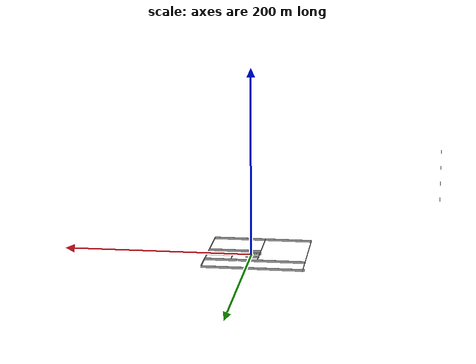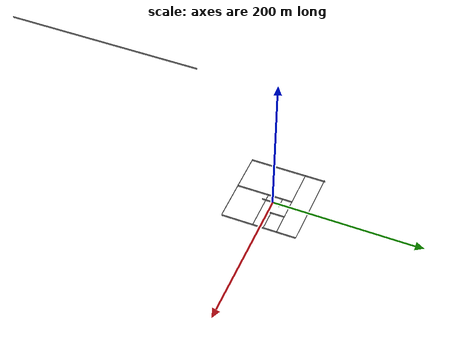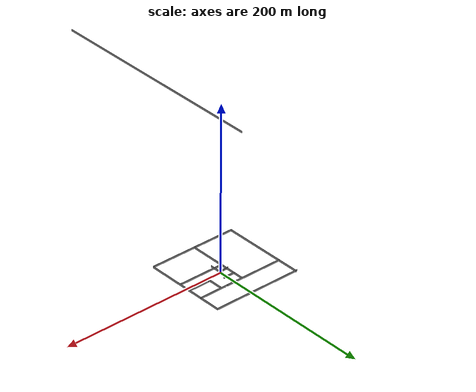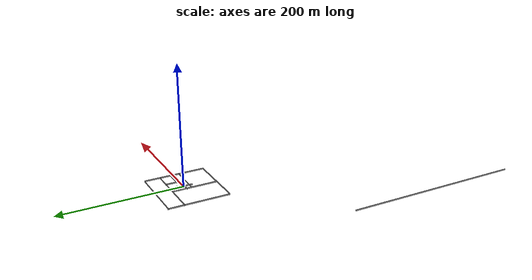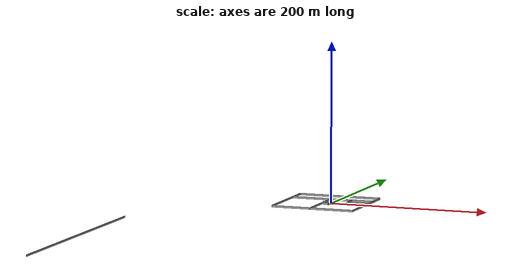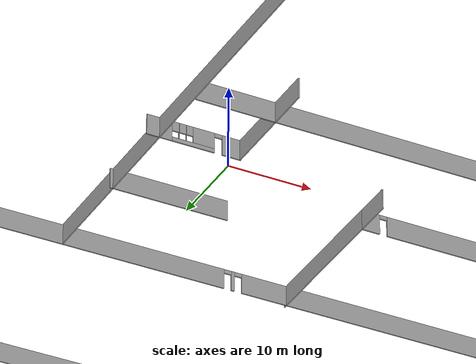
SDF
<?xml version='1.0'?>
<sdf version='1.7'>
  <model name='WorldOne'>
    <pose>-74.4501 -217.233 0 0 -0 0</pose>
    <link name='Wall_15'>
      <collision name='Wall_15_Collision'>
        <geometry>
          <box>
            <size>294 0.15 2.5</size>
          </box>
        </geometry>
        <pose>0 0 1.25 0 -0 0</pose>
      </collision>
      <visual name='Wall_15_Visual'>
        <pose>0 0 1.25 0 -0 0</pose>
        <geometry>
          <box>
            <size>294 0.15 2.5</size>
          </box>
        </geometry>
        <material>
          <script>
            <uri>file://media/materials/scripts/gazebo.material</uri>
            <name>Gazebo/Grey</name>
          </script>
          <ambient>1 1 1 1</ambient>
        </material>
        <meta>
          <layer>0</layer>
        </meta>
      </visual>
      <pose>-121.056 -119.672 0 0 -0 -1.5708</pose>
    </link>
    <link name='Wall_18'>
      <collision name='Wall_18_Collision'>
        <geometry>
          <box>
            <size>107.25 0.15 2.5</size>
          </box>
        </geometry>
        <pose>0 0 1.25 0 -0 0</pose>
      </collision>
      <visual name='Wall_18_Visual'>
        <pose>0 0 1.25 0 -0 0</pose>
        <geometry>
          <box>
            <size>107.25 0.15 2.5</size>
          </box>
        </geometry>
        <material>
          <script>
            <uri>file://media/materials/scripts/gazebo.material</uri>
            <name>Gazebo/Grey</name>
          </script>
          <ambient>1 1 1 1</ambient>
        </material>
        <meta>
          <layer>0</layer>
        </meta>
      </visual>
      <pose>67.04 265.097 0 0 -0 0</pose>
    </link>
    <link name='Wall_19'>
      <pose>120.59 215.172 0 0 -0 -1.5708</pose>
      <visual name='Wall_19_Visual_0'>
        <pose>-26.3552 0 1.25 0 -0 0</pose>
        <geometry>
          <box>
            <size>47.2895 0.15 2.5</size>
          </box>
        </geometry>
        <material>
          <script>
            <uri>file://media/materials/scripts/gazebo.material</uri>
            <name>Gazebo/Grey</name>
          </script>
          <ambient>1 1 1 1</ambient>
        </material>
        <meta>
          <layer>0</layer>
        </meta>
      </visual>
      <collision name='Wall_19_Collision_0'>
        <geometry>
          <box>
            <size>47.2895 0.15 2.5</size>
          </box>
        </geometry>
        <pose>-26.3552 0 1.25 0 -0 0</pose>
      </collision>
      <visual name='Wall_19_Visual_1'>
        <pose>24.0948 0 1.25 0 -0 0</pose>
        <geometry>
          <box>
            <size>51.8105 0.15 2.5</size>
          </box>
        </geometry>
        <material>
          <script>
            <uri>file://media/materials/scripts/gazebo.material</uri>
            <name>Gazebo/Grey</name>
          </script>
          <ambient>1 1 1 1</ambient>
        </material>
        <meta>
          <layer>0</layer>
        </meta>
      </visual>
      <collision name='Wall_19_Collision_1'>
        <geometry>
          <box>
            <size>51.8105 0.15 2.5</size>
          </box>
        </geometry>
        <pose>24.0948 0 1.25 0 -0 0</pose>
      </collision>
      <visual name='Wall_19_Visual_2'>
        <pose>-2.2605 0 2.25 0 -0 0</pose>
        <geometry>
          <box>
            <size>0.9 0.15 0.5</size>
          </box>
        </geometry>
        <material>
          <script>
            <uri>file://media/materials/scripts/gazebo.material</uri>
            <name>Gazebo/Grey</name>
          </script>
          <ambient>1 1 1 1</ambient>
        </material>
        <meta>
          <layer>0</layer>
        </meta>
      </visual>
      <collision name='Wall_19_Collision_2'>
        <geometry>
          <box>
            <size>0.9 0.15 0.5</size>
          </box>
        </geometry>
        <pose>-2.2605 0 2.25 0 -0 0</pose>
      </collision>
    </link>
    <link name='Wall_20'>
      <collision name='Wall_20_Collision'>
        <geometry>
          <box>
            <size>105.25 0.15 2.5</size>
          </box>
        </geometry>
        <pose>0 0 1.25 0 -0 0</pose>
      </collision>
      <visual name='Wall_20_Visual'>
        <pose>0 0 1.25 0 -0 0</pose>
        <geometry>
          <box>
            <size>105.25 0.15 2.5</size>
          </box>
        </geometry>
        <material>
          <script>
            <uri>file://media/materials/scripts/gazebo.material</uri>
            <name>Gazebo/Grey</name>
          </script>
          <ambient>1 1 1 1</ambient>
        </material>
        <meta>
          <layer>0</layer>
        </meta>
      </visual>
      <pose>68.04 165.247 0 0 -0 3.14159</pose>
    </link>
    <link name='Wall_21'>
      <collision name='Wall_21_Collision'>
        <geometry>
          <box>
            <size>101.5 0.15 2.5</size>
          </box>
        </geometry>
        <pose>0 0 1.25 0 -0 0</pose>
      </collision>
      <visual name='Wall_21_Visual'>
        <pose>0 0 1.25 0 -0 0</pose>
        <geometry>
          <box>
            <size>101.5 0.15 2.5</size>
          </box>
        </geometry>
        <material>
          <script>
            <uri>file://media/materials/scripts/gazebo.material</uri>
            <name>Gazebo/Grey</name>
          </script>
          <ambient>1 1 1 1</ambient>
        </material>
        <meta>
          <layer>0</layer>
        </meta>
      </visual>
      <pose>15.49 215.922 0 0 -0 1.5708</pose>
    </link>
    <link name='Wall_23'>
      <pose>67.8814 239.485 0 0 -0 0</pose>
      <visual name='Wall_23_Visual_0'>
        <pose>-17.9045 0 1.25 0 -0 0</pose>
        <geometry>
          <box>
            <size>70.6911 0.15 2.5</size>
          </box>
        </geometry>
        <material>
          <script>
            <uri>file://media/materials/scripts/gazebo.material</uri>
            <name>Gazebo/Grey</name>
          </script>
          <ambient>1 1 1 1</ambient>
        </material>
        <meta>
          <layer>0</layer>
        </meta>
      </visual>
      <collision name='Wall_23_Collision_0'>
        <geometry>
          <box>
            <size>70.6911 0.15 2.5</size>
          </box>
        </geometry>
        <pose>-17.9045 0 1.25 0 -0 0</pose>
      </collision>
      <visual name='Wall_23_Visual_1'>
        <pose>18.5331 0 1.25 0 -0 0</pose>
        <geometry>
          <box>
            <size>0.38406 0.15 2.5</size>
          </box>
        </geometry>
        <material>
          <script>
            <uri>file://media/materials/scripts/gazebo.material</uri>
            <name>Gazebo/Grey</name>
          </script>
          <ambient>1 1 1 1</ambient>
        </material>
        <meta>
          <layer>0</layer>
        </meta>
      </visual>
      <collision name='Wall_23_Collision_1'>
        <geometry>
          <box>
            <size>0.38406 0.15 2.5</size>
          </box>
        </geometry>
        <pose>18.5331 0 1.25 0 -0 0</pose>
      </collision>
      <visual name='Wall_23_Visual_2'>
        <pose>36.4376 0 1.25 0 -0 0</pose>
        <geometry>
          <box>
            <size>33.6249 0.15 2.5</size>
          </box>
        </geometry>
        <material>
          <script>
            <uri>file://media/materials/scripts/gazebo.material</uri>
            <name>Gazebo/Grey</name>
          </script>
          <ambient>1 1 1 1</ambient>
        </material>
        <meta>
          <layer>0</layer>
        </meta>
      </visual>
      <collision name='Wall_23_Collision_2'>
        <geometry>
          <box>
            <size>33.6249 0.15 2.5</size>
          </box>
        </geometry>
        <pose>36.4376 0 1.25 0 -0 0</pose>
      </collision>
      <visual name='Wall_23_Visual_3'>
        <pose>17.8911 0 2.25 0 -0 0</pose>
        <geometry>
          <box>
            <size>0.9 0.15 0.5</size>
          </box>
        </geometry>
        <material>
          <script>
            <uri>file://media/materials/scripts/gazebo.material</uri>
            <name>Gazebo/Grey</name>
          </script>
          <ambient>1 1 1 1</ambient>
        </material>
        <meta>
          <layer>0</layer>
        </meta>
      </visual>
      <collision name='Wall_23_Collision_3'>
        <geometry>
          <box>
            <size>0.9 0.15 0.5</size>
          </box>
        </geometry>
        <pose>17.8911 0 2.25 0 -0 0</pose>
      </collision>
      <visual name='Wall_23_Visual_4'>
        <pose>19.1751 0 2.25 0 -0 0</pose>
        <geometry>
          <box>
            <size>0.9 0.15 0.5</size>
          </box>
        </geometry>
        <material>
          <script>
            <uri>file://media/materials/scripts/gazebo.material</uri>
            <name>Gazebo/Grey</name>
          </script>
          <ambient>1 1 1 1</ambient>
        </material>
        <meta>
          <layer>0</layer>
        </meta>
      </visual>
      <collision name='Wall_23_Collision_4'>
        <geometry>
          <box>
            <size>0.9 0.15 0.5</size>
          </box>
        </geometry>
        <pose>19.1751 0 2.25 0 -0 0</pose>
      </collision>
    </link>
    <link name='Wall_25'>
      <collision name='Wall_25_Collision'>
        <geometry>
          <box>
            <size>74.25 0.15 2.5</size>
          </box>
        </geometry>
        <pose>0 0 1.25 0 -0 0</pose>
      </collision>
      <visual name='Wall_25_Visual'>
        <pose>0 0 1.25 0 -0 0</pose>
        <geometry>
          <box>
            <size>74.25 0.15 2.5</size>
          </box>
        </geometry>
        <material>
          <script>
            <uri>file://media/materials/scripts/gazebo.material</uri>
            <name>Gazebo/Grey</name>
          </script>
          <ambient>1 1 1 1</ambient>
        </material>
        <meta>
          <layer>0</layer>
        </meta>
      </visual>
      <pose>65.4457 202.187 0 0 -0 -1.5708</pose>
    </link>
    <link name='Wall_27'>
      <collision name='Wall_27_Collision'>
        <geometry>
          <box>
            <size>55 0.15 2.5</size>
          </box>
        </geometry>
        <pose>0 0 1.25 0 -0 0</pose>
      </collision>
      <visual name='Wall_27_Visual'>
        <pose>0 0 1.25 0 -0 0</pose>
        <geometry>
          <box>
            <size>55 0.15 2.5</size>
          </box>
        </geometry>
        <material>
          <script>
            <uri>file://media/materials/scripts/gazebo.material</uri>
            <name>Gazebo/Grey</name>
          </script>
          <ambient>1 1 1 1</ambient>
        </material>
        <meta>
          <layer>0</layer>
        </meta>
      </visual>
      <pose>93.1182 207.556 0 0 -0 0</pose>
    </link>
    <link name='Wall_29'>
      <pose>69.5107 215.724 0 0 -0 0</pose>
      <visual name='Wall_29_Visual_0'>
        <pose>-4.12352 0 1.25 0 -0 0</pose>
        <geometry>
          <box>
            <size>3.00297 0.15 2.5</size>
          </box>
        </geometry>
        <material>
          <script>
            <uri>file://media/materials/scripts/gazebo.material</uri>
            <name>Gazebo/Grey</name>
          </script>
          <ambient>1 1 1 1</ambient>
        </material>
        <meta>
          <layer>0</layer>
        </meta>
      </visual>
      <collision name='Wall_29_Collision_0'>
        <geometry>
          <box>
            <size>3.00297 0.15 2.5</size>
          </box>
        </geometry>
        <pose>-4.12352 0 1.25 0 -0 0</pose>
      </collision>
      <visual name='Wall_29_Visual_1'>
        <pose>4.49676 0 1.25 0 -0 0</pose>
        <geometry>
          <box>
            <size>2.25648 0.15 2.5</size>
          </box>
        </geometry>
        <material>
          <script>
            <uri>file://media/materials/scripts/gazebo.material</uri>
            <name>Gazebo/Grey</name>
          </script>
          <ambient>1 1 1 1</ambient>
        </material>
        <meta>
          <layer>0</layer>
        </meta>
      </visual>
      <collision name='Wall_29_Collision_1'>
        <geometry>
          <box>
            <size>2.25648 0.15 2.5</size>
          </box>
        </geometry>
        <pose>4.49676 0 1.25 0 -0 0</pose>
      </collision>
      <visual name='Wall_29_Visual_2'>
        <pose>-0.076754 0 0.25 0 -0 0</pose>
        <geometry>
          <box>
            <size>5.09056 0.15 0.5</size>
          </box>
        </geometry>
        <material>
          <script>
            <uri>file://media/materials/scripts/gazebo.material</uri>
            <name>Gazebo/Grey</name>
          </script>
          <ambient>1 1 1 1</ambient>
        </material>
        <meta>
          <layer>0</layer>
        </meta>
      </visual>
      <collision name='Wall_29_Collision_2'>
        <geometry>
          <box>
            <size>5.09056 0.15 0.5</size>
          </box>
        </geometry>
        <pose>-0.076754 0 0.25 0 -0 0</pose>
      </collision>
      <visual name='Wall_29_Visual_3'>
        <pose>-1.78615 0 1.5 0 -0 0</pose>
        <geometry>
          <box>
            <size>0.07177 0.15 2</size>
          </box>
        </geometry>
        <material>
          <script>
            <uri>file://media/materials/scripts/gazebo.material</uri>
            <name>Gazebo/Grey</name>
          </script>
          <ambient>1 1 1 1</ambient>
        </material>
        <meta>
          <layer>0</layer>
        </meta>
      </visual>
      <collision name='Wall_29_Collision_3'>
        <geometry>
          <box>
            <size>0.07177 0.15 2</size>
          </box>
        </geometry>
        <pose>-1.78615 0 1.5 0 -0 0</pose>
      </collision>
      <visual name='Wall_29_Visual_4'>
        <pose>-0.934458 0 1.5 0 -0 0</pose>
        <geometry>
          <box>
            <size>0.03161 0.15 2</size>
          </box>
        </geometry>
        <material>
          <script>
            <uri>file://media/materials/scripts/gazebo.material</uri>
            <name>Gazebo/Grey</name>
          </script>
          <ambient>1 1 1 1</ambient>
        </material>
        <meta>
          <layer>0</layer>
        </meta>
      </visual>
      <collision name='Wall_29_Collision_4'>
        <geometry>
          <box>
            <size>0.03161 0.15 2</size>
          </box>
        </geometry>
        <pose>-0.934458 0 1.5 0 -0 0</pose>
      </collision>
      <visual name='Wall_29_Visual_5'>
        <pose>1.17494 0 1.5 0 -0 0</pose>
        <geometry>
          <box>
            <size>2.58718 0.15 2</size>
          </box>
        </geometry>
        <material>
          <script>
            <uri>file://media/materials/scripts/gazebo.material</uri>
            <name>Gazebo/Grey</name>
          </script>
          <ambient>1 1 1 1</ambient>
        </material>
        <meta>
          <layer>0</layer>
        </meta>
      </visual>
      <collision name='Wall_29_Collision_5'>
        <geometry>
          <box>
            <size>2.58718 0.15 2</size>
          </box>
        </geometry>
        <pose>1.17494 0 1.5 0 -0 0</pose>
      </collision>
      <visual name='Wall_29_Visual_6'>
        <pose>-2.22203 0 1.9 0 -0 0</pose>
        <geometry>
          <box>
            <size>0.8 0.15 1.2</size>
          </box>
        </geometry>
        <material>
          <script>
            <uri>file://media/materials/scripts/gazebo.material</uri>
            <name>Gazebo/Grey</name>
          </script>
          <ambient>1 1 1 1</ambient>
        </material>
        <meta>
          <layer>0</layer>
        </meta>
      </visual>
      <collision name='Wall_29_Collision_6'>
        <geometry>
          <box>
            <size>0.8 0.15 1.2</size>
          </box>
        </geometry>
        <pose>-2.22203 0 1.9 0 -0 0</pose>
      </collision>
      <visual name='Wall_29_Visual_7'>
        <pose>-1.35026 0 1.9 0 -0 0</pose>
        <geometry>
          <box>
            <size>0.8 0.15 1.2</size>
          </box>
        </geometry>
        <material>
          <script>
            <uri>file://media/materials/scripts/gazebo.material</uri>
            <name>Gazebo/Grey</name>
          </script>
          <ambient>1 1 1 1</ambient>
        </material>
        <meta>
          <layer>0</layer>
        </meta>
      </visual>
      <collision name='Wall_29_Collision_7'>
        <geometry>
          <box>
            <size>0.8 0.15 1.2</size>
          </box>
        </geometry>
        <pose>-1.35026 0 1.9 0 -0 0</pose>
      </collision>
      <visual name='Wall_29_Visual_8'>
        <pose>-0.518652 0 1.9 0 -0 0</pose>
        <geometry>
          <box>
            <size>0.8 0.15 1.2</size>
          </box>
        </geometry>
        <material>
          <script>
            <uri>file://media/materials/scripts/gazebo.material</uri>
            <name>Gazebo/Grey</name>
          </script>
          <ambient>1 1 1 1</ambient>
        </material>
        <meta>
          <layer>0</layer>
        </meta>
      </visual>
      <collision name='Wall_29_Collision_8'>
        <geometry>
          <box>
            <size>0.8 0.15 1.2</size>
          </box>
        </geometry>
        <pose>-0.518652 0 1.9 0 -0 0</pose>
      </collision>
      <visual name='Wall_29_Visual_9'>
        <pose>2.91852 0 2.25 0 -0 0</pose>
        <geometry>
          <box>
            <size>0.9 0.15 0.5</size>
          </box>
        </geometry>
        <material>
          <script>
            <uri>file://media/materials/scripts/gazebo.material</uri>
            <name>Gazebo/Grey</name>
          </script>
          <ambient>1 1 1 1</ambient>
        </material>
        <meta>
          <layer>0</layer>
        </meta>
      </visual>
      <collision name='Wall_29_Collision_9'>
        <geometry>
          <box>
            <size>0.9 0.15 0.5</size>
          </box>
        </geometry>
        <pose>2.91852 0 2.25 0 -0 0</pose>
      </collision>
    </link>
    <link name='Wall_30'>
      <collision name='Wall_30_Collision'>
        <geometry>
          <box>
            <size>13.5 0.15 2.5</size>
          </box>
        </geometry>
        <pose>0 0 1.25 0 -0 0</pose>
      </collision>
      <visual name='Wall_30_Visual'>
        <pose>0 0 1.25 0 -0 0</pose>
        <geometry>
          <box>
            <size>13.5 0.15 2.5</size>
          </box>
        </geometry>
        <material>
          <script>
            <uri>file://media/materials/scripts/gazebo.material</uri>
            <name>Gazebo/Grey</name>
          </script>
          <ambient>1 1 1 1</ambient>
        </material>
        <meta>
          <layer>0</layer>
        </meta>
      </visual>
      <pose>75.0607 209.049 0 0 -0 -1.5708</pose>
    </link>
    <link name='Wall_32'>
      <collision name='Wall_32_Collision'>
        <geometry>
          <box>
            <size>18.25 0.15 2.5</size>
          </box>
        </geometry>
        <pose>0 0 1.25 0 -0 0</pose>
      </collision>
      <visual name='Wall_32_Visual'>
        <pose>0 0 1.25 0 -0 0</pose>
        <geometry>
          <box>
            <size>18.25 0.15 2.5</size>
          </box>
        </geometry>
        <material>
          <script>
            <uri>file://media/materials/scripts/gazebo.material</uri>
            <name>Gazebo/Grey</name>
          </script>
          <ambient>1 1 1 1</ambient>
        </material>
        <meta>
          <layer>0</layer>
        </meta>
      </visual>
      <pose>93.1729 230.788 0 0 -0 -1.5708</pose>
    </link>
    <link name='Wall_33'>
      <pose>106.723 221.738 0 0 -0 0</pose>
      <visual name='Wall_33_Visual_0'>
        <pose>-12.5054 0 1.25 0 -0 0</pose>
        <geometry>
          <box>
            <size>2.23925 0.15 2.5</size>
          </box>
        </geometry>
        <material>
          <script>
            <uri>file://media/materials/scripts/gazebo.material</uri>
            <name>Gazebo/Grey</name>
          </script>
          <ambient>1 1 1 1</ambient>
        </material>
        <meta>
          <layer>0</layer>
        </meta>
      </visual>
      <collision name='Wall_33_Collision_0'>
        <geometry>
          <box>
            <size>2.23925 0.15 2.5</size>
          </box>
        </geometry>
        <pose>-12.5054 0 1.25 0 -0 0</pose>
      </collision>
      <visual name='Wall_33_Visual_1'>
        <pose>1.56963 0 1.25 0 -0 0</pose>
        <geometry>
          <box>
            <size>24.1107 0.15 2.5</size>
          </box>
        </geometry>
        <material>
          <script>
            <uri>file://media/materials/scripts/gazebo.material</uri>
            <name>Gazebo/Grey</name>
          </script>
          <ambient>1 1 1 1</ambient>
        </material>
        <meta>
          <layer>0</layer>
        </meta>
      </visual>
      <collision name='Wall_33_Collision_1'>
        <geometry>
          <box>
            <size>24.1107 0.15 2.5</size>
          </box>
        </geometry>
        <pose>1.56963 0 1.25 0 -0 0</pose>
      </collision>
      <visual name='Wall_33_Visual_2'>
        <pose>-10.9357 0 2.25 0 -0 0</pose>
        <geometry>
          <box>
            <size>0.9 0.15 0.5</size>
          </box>
        </geometry>
        <material>
          <script>
            <uri>file://media/materials/scripts/gazebo.material</uri>
            <name>Gazebo/Grey</name>
          </script>
          <ambient>1 1 1 1</ambient>
        </material>
        <meta>
          <layer>0</layer>
        </meta>
      </visual>
      <collision name='Wall_33_Collision_2'>
        <geometry>
          <box>
            <size>0.9 0.15 0.5</size>
          </box>
        </geometry>
        <pose>-10.9357 0 2.25 0 -0 0</pose>
      </collision>
    </link>
    <link name='Wall_35'>
      <collision name='Wall_35_Collision'>
        <geometry>
          <box>
            <size>14.25 0.15 2.5</size>
          </box>
        </geometry>
        <pose>0 0 1.25 0 -0 0</pose>
      </collision>
      <visual name='Wall_35_Visual'>
        <pose>0 0 1.25 0 -0 0</pose>
        <geometry>
          <box>
            <size>14.25 0.15 2.5</size>
          </box>
        </geometry>
        <material>
          <script>
            <uri>file://media/materials/scripts/gazebo.material</uri>
            <name>Gazebo/Grey</name>
          </script>
          <ambient>1 1 1 1</ambient>
        </material>
        <meta>
          <layer>0</layer>
        </meta>
      </visual>
      <pose>72.1662 226.918 0 0 -0 0</pose>
    </link>
    <link name='Wall_37'>
      <collision name='Wall_37_Collision'>
        <geometry>
          <box>
            <size>4.75 0.15 2.5</size>
          </box>
        </geometry>
        <pose>0 0 1.25 0 -0 0</pose>
      </collision>
      <visual name='Wall_37_Visual'>
        <pose>0 0 1.25 0 -0 0</pose>
        <geometry>
          <box>
            <size>4.75 0.15 2.5</size>
          </box>
        </geometry>
        <material>
          <script>
            <uri>file://media/materials/scripts/gazebo.material</uri>
            <name>Gazebo/Grey</name>
          </script>
          <ambient>1 1 1 1</ambient>
        </material>
        <meta>
          <layer>0</layer>
        </meta>
      </visual>
      <pose>93.1729 219.438 0 0 -0 -1.5708</pose>
    </link>
    <static>1</static>
  </model>
</sdf>
